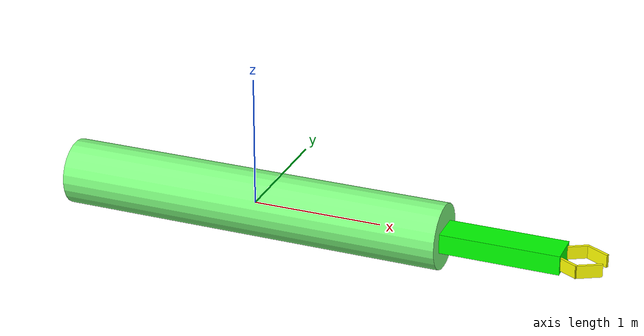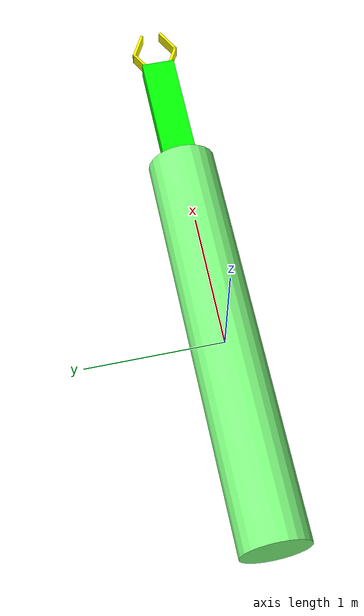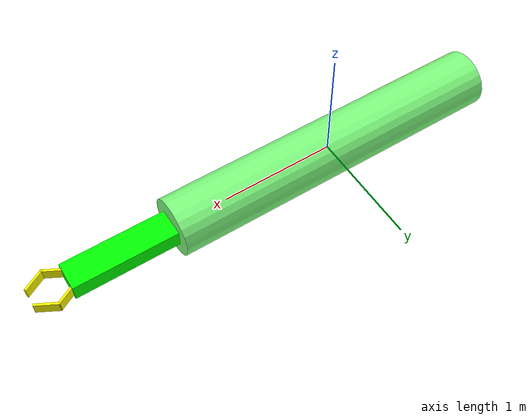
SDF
<?xml version="1.0" ?>
<sdf version="1.6">
  <world name="default">
    <plugin
      filename="ignition-gazebo-physics-system"
      name="gz::sim::systems::Physics">
    </plugin>
    <plugin
      filename="ignition-gazebo-scene-broadcaster-system"
      name="gz::sim::systems::SceneBroadcaster">
    </plugin>

    <light type="directional" name="sun">
      <cast_shadows>true</cast_shadows>
      <pose>0 0 10 0 0 0</pose>
      <diffuse>1 1 1 1</diffuse>
      <specular>0.5 0.5 0.5 1</specular>
      <attenuation>
        <range>1000</range>
        <constant>0.9</constant>
        <linear>0.01</linear>
        <quadratic>0.001</quadratic>
      </attenuation>
      <direction>-0.5 0.1 -0.9</direction>
    </light>

    <model name="joint_position_controller_demo">
      <pose>0 0 0 0 1.57 0</pose>
      <link name="base_link">
        <pose>0.0 0.0 0.0 0 0 0</pose>
        <inertial>
          <inertia>
            <ixx>2.501</ixx>
            <ixy>0</ixy>
            <ixz>0</ixz>
            <iyy>2.501</iyy>
            <iyz>0</iyz>
            <izz>5</izz>
          </inertia>
          <mass>120.0</mass>
        </inertial>
        <visual name="base_visual">
          <pose>0.0 0.0 0.0 0 0 0</pose>
          <geometry>
            <cylinder>
            	<radius>0.25</radius>
            	<length>3</length>
            </cylinder>
          </geometry>
          <material>
            <ambient>0.5 1.0 0.5 1</ambient>
            <diffuse>0.5 1.0 0.5 1</diffuse>
            <specular>0.0 1.0 0.0 1</specular>
          </material>
        </visual>
        <collision name="base_collision">
          <pose>0.0 0.0 0.0 0 0 0</pose>
          <geometry>
            <box>
              <size>0.5 0.5 0.01</size>
            </box>
          </geometry>
        </collision>
      </link>
      <link name="rotor">
        <pose>0.0 0.0 1.9 0 0 0</pose>
        <inertial>
          <inertia>
            <ixx>0.032</ixx>
            <ixy>0</ixy>
            <ixz>0</ixz>
            <iyy>0.032</iyy>
            <iyz>0</iyz>
            <izz>0.00012</izz>
          </inertia>
          <mass>0.6</mass>
        </inertial>
        <visual name="visual">
          <geometry>
            <box>
              <size>0.15 0.25 1.00</size>
            </box>
          </geometry>
          <material>
            <ambient>0.0 1.0 0.0 1</ambient>
            <diffuse>0.0 1.0 0.0 1</diffuse>
            <specular>0.0 1.0 0.0 1</specular>
          </material>
          <material>
            <ambient>0.2 0.8 0.2 1</ambient>
          </material>
        </visual>
        <collision name="collision">
          <geometry>
            <box>
              <size>0.25 0.1 0.05</size>
            </box>
          </geometry>
        </collision>
      </link>

      <link name="rotor2">
        <pose>0.0 0.12 2.45 -0.5 0 0</pose>
        <inertial>
          <inertia>
            <ixx>0.032</ixx>
            <ixy>0</ixy>
            <ixz>0</ixz>
            <iyy>0.032</iyy>
            <iyz>0</iyz>
            <izz>0.00012</izz>
          </inertia>
          <mass>0.02</mass>
        </inertial>
        <visual name="visual2">
          <geometry>
            <box>
              <size>0.1 0.02 0.2</size>
            </box>
          </geometry>
          <material>
            <ambient>1.0 1.0 0.0 1</ambient>
            <diffuse>1.0 1.0 0.0 1</diffuse>
            <specular>1.0 1.0 0.0 1</specular>
          </material>
          <material>
            <ambient>0.2 0.8 0.2 1</ambient>
          </material>
        </visual>
        <collision name="collision2">
          <geometry>
            <box>
              <size>0.1 0.02 0.2</size>
            </box>
          </geometry>
        </collision>
      </link>

      <link name="cut2">
        <pose>0.0 0.12 2.61 0.5 0 0</pose>
        <inertial>
          <inertia>
            <ixx>0.032</ixx>
            <ixy>0</ixy>
            <ixz>0</ixz>
            <iyy>0.032</iyy>
            <iyz>0</iyz>
            <izz>0.00012</izz>
          </inertia>
          <mass>0.02</mass>
        </inertial>
        <visual name="visual2">
          <geometry>
            <box>
              <size>0.1 0.02 0.2</size>
            </box>
          </geometry>
          <material>
            <ambient>1.0 1.0 0.0 1</ambient>
            <diffuse>1.0 1.0 0.0 1</diffuse>
            <specular>1.0 1.0 0.0 1</specular>
          </material>
          <material>
            <ambient>0.2 0.8 0.2 1</ambient>
          </material>
        </visual>
        <collision name="collision2">
          <geometry>
            <box>
              <size>0.1 0.02 0.2</size>
            </box>
          </geometry>
        </collision>
      </link>

      <link name="rotor3">
        <pose>0.0 -0.12 2.45 0.5 0 0</pose>
        <inertial>
          <inertia>
            <ixx>0.032</ixx>
            <ixy>0</ixy>
            <ixz>0</ixz>
            <iyy>0.032</iyy>
            <iyz>0</iyz>
            <izz>0.00012</izz>
          </inertia>
          <mass>0.02</mass>
        </inertial>
        <visual name="visual2">
          <geometry>
            <box>
              <size>0.1 0.02 0.2</size>
            </box>
          </geometry>
          <material>
            <ambient>1.0 1.0 0.0 1</ambient>
            <diffuse>1.0 1.0 0.0 1</diffuse>
            <specular>1.0 1.0 0.0 1</specular>
          </material>
          <material>
            <ambient>0.2 0.8 0.2 1</ambient>
          </material>
        </visual>
        <collision name="collision2">
          <geometry>
            <box>
              <size>0.1 0.02 0.2</size>
            </box>
          </geometry>
        </collision>
      </link>

      <link name="cut3">
        <pose>0.0 -0.12 2.61 -0.5 0 0</pose>
        <inertial>
          <inertia>
            <ixx>0.032</ixx>
            <ixy>0</ixy>
            <ixz>0</ixz>
            <iyy>0.032</iyy>
            <iyz>0</iyz>
            <izz>0.00012</izz>
          </inertia>
          <mass>0.02</mass>
        </inertial>
        <visual name="visual2">
          <geometry>
            <box>
              <size>0.1 0.02 0.2</size>
            </box>
          </geometry>
          <material>
            <ambient>1.0 1.0 0.0 1</ambient>
            <diffuse>1.0 1.0 0.0 1</diffuse>
            <specular>1.0 1.0 0.0 1</specular>
          </material>
          <material>
            <ambient>0.2 0.8 0.2 1</ambient>
          </material>
        </visual>
        <collision name="collision2">
          <geometry>
            <box>
              <size>0.1 0.02 0.2</size>
            </box>
          </geometry>
        </collision>
      </link>

      <joint name="world_fixed" type="fixed">
        <parent>world</parent>
        <child>base_link</child>
      </joint>

      <joint name="j1" type="revolute">
        <pose>0 0 -0.5 0 0 0</pose>
        <parent>base_link</parent>
        <child>rotor</child>
        <axis>
          <xyz>0 0 1</xyz>
          <dynamics>
            <damping>0.5</damping>
          </dynamics>
        </axis>
      </joint>

      <joint name="j2" type="revolute">
        <pose>0 0 0 0 0 0</pose>
        <parent>rotor</parent>
        <child>rotor2</child>
        <axis>
          <xyz>1 0 0</xyz>
          <dynamics>
            <damping>0.5</damping>
          </dynamics>
        </axis>
      </joint>

      <joint name="j5" type="revolute">
        <pose>0 0 0 0 0 0</pose>
        <parent>rotor</parent>
        <child>rotor3</child>
        <axis>
          <xyz>1 0 0</xyz>
          <dynamics>
            <damping>0.5</damping>
          </dynamics>
        </axis>
      </joint>

      <joint name="j3" type="fixed">
        <pose>0 0 0 0 0 0</pose>
        <parent>rotor2</parent>
        <child>cut2</child>
      </joint>

      <joint name="j4" type="fixed">
        <pose>0 0 0 0 0 0</pose>
        <parent>rotor3</parent>
        <child>cut3</child>
      </joint>

      <plugin
        filename="ignition-gazebo-joint-controller-system"
        name="gz::sim::systems::JointController">
        <joint_name>j1</joint_name>
        <initial_velocity>0.0</initial_velocity>
        <topic>val_speed</topic>
      </plugin>

      <plugin
        filename="ignition-gazebo-joint-position-controller-system"
        name="gz::sim::systems::JointPositionController">
        <joint_name>j2</joint_name>
        <topic>rotor_cmd2</topic>
        <p_gain>1</p_gain>
        <i_gain>0.1</i_gain>
        <d_gain>0.01</d_gain>
        <i_max>1</i_max>
        <i_min>-1</i_min>
        <cmd_max>100</cmd_max>
        <cmd_min>-100</cmd_min>
      </plugin>

      <plugin
        filename="ignition-gazebo-joint-position-controller-system"
        name="gz::sim::systems::JointPositionController">
        <joint_name>j5</joint_name>
        <topic>rotor_cmd3</topic>
        <p_gain>1</p_gain>
        <i_gain>0.1</i_gain>
        <d_gain>0.01</d_gain>
        <i_max>1</i_max>
        <i_min>-1</i_min>
        <cmd_max>100</cmd_max>
        <cmd_min>-100</cmd_min>
      </plugin>

    </model>
  </world>
</sdf>
